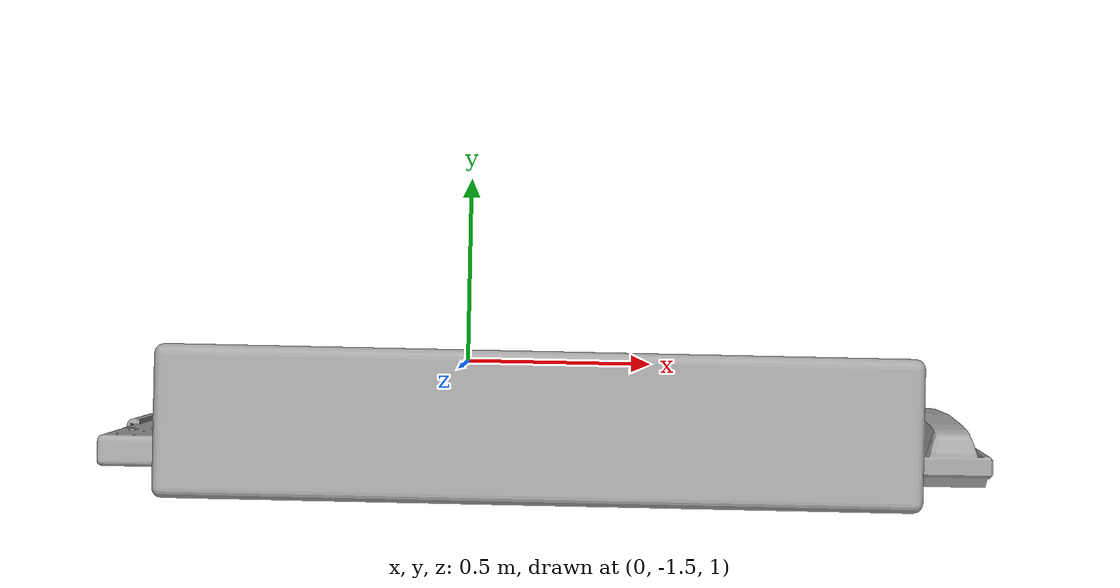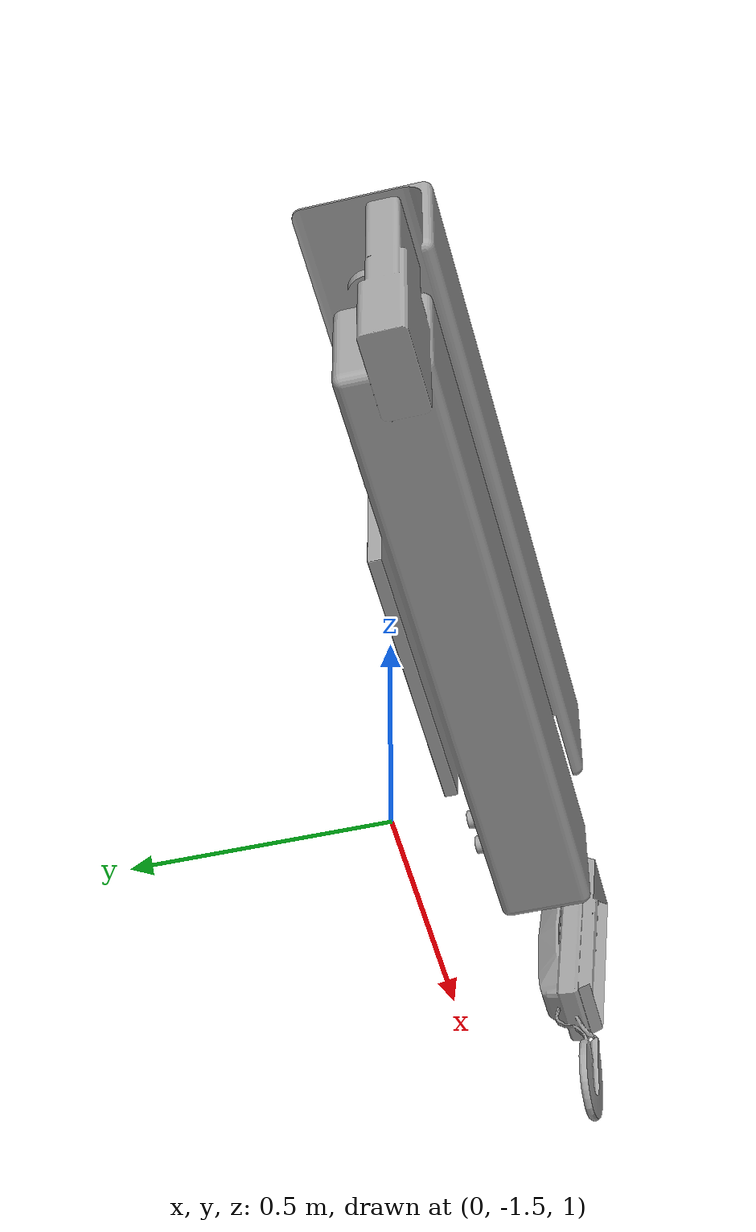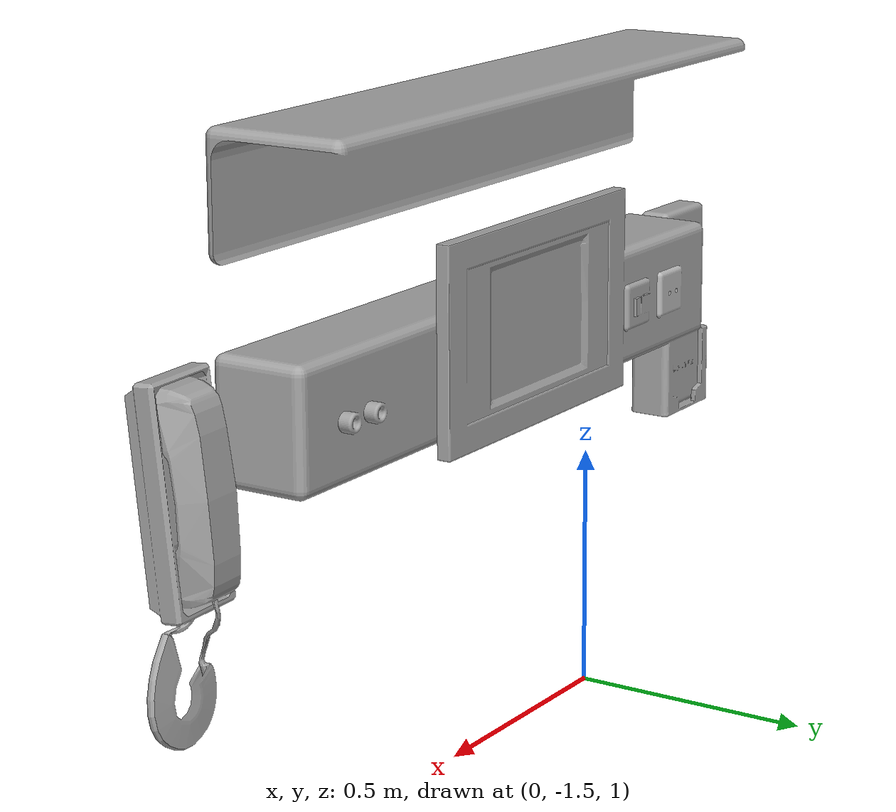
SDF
<?xml version='1.0'?>
<sdf version='1.6'>
  <model name='emergency_console'>
    <pose frame=''>0.2 -1.62 1.2 0 0 3.1415</pose>
    <link name='body'>
      <pose frame=''>0 0 0 0 0 0</pose>
      <visual name='body_visual'>
        <pose frame=''>0 0 0 0 0 0</pose>
        <geometry>
          <mesh>
            <uri>model://emergency_console/meshes/emergency_console.dae</uri>
            <scale>0.01 0.01 0.01</scale>
          </mesh>
        </geometry>
        <meta>
          <layer>1</layer>
        </meta>
      </visual>
      <collision name='body_collision'>
        <geometry>
          <mesh>
            <uri>model://emergency_console/meshes/emergency_console.dae</uri>
            <scale>0.01 0.01 0.01</scale>
          </mesh>
        </geometry>
        <pose frame=''>0 0 0 0 0 0</pose>
      </collision>
    </link>
    <static>1</static>
  </model>
</sdf>
